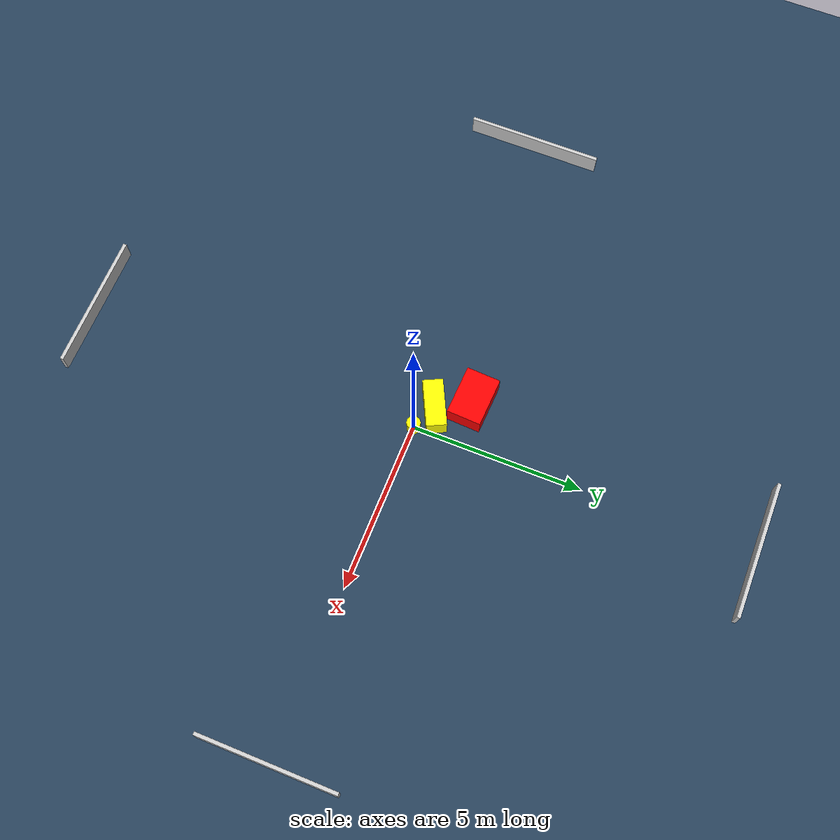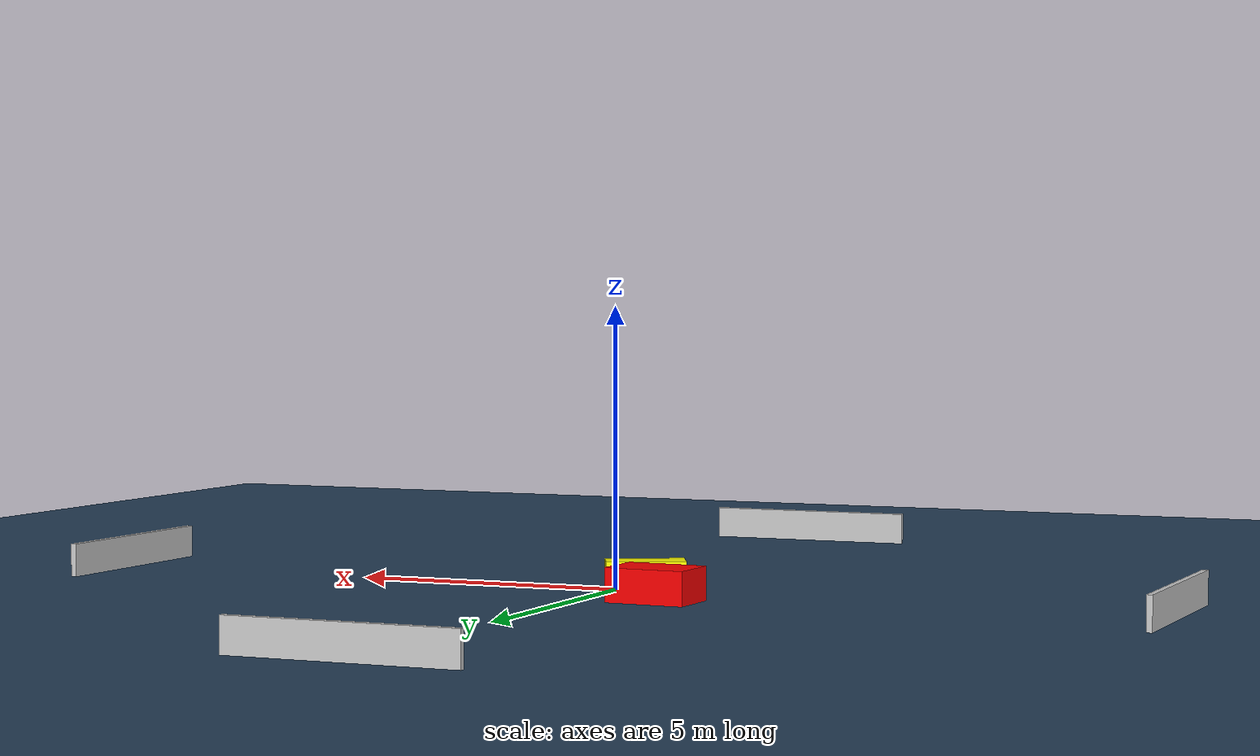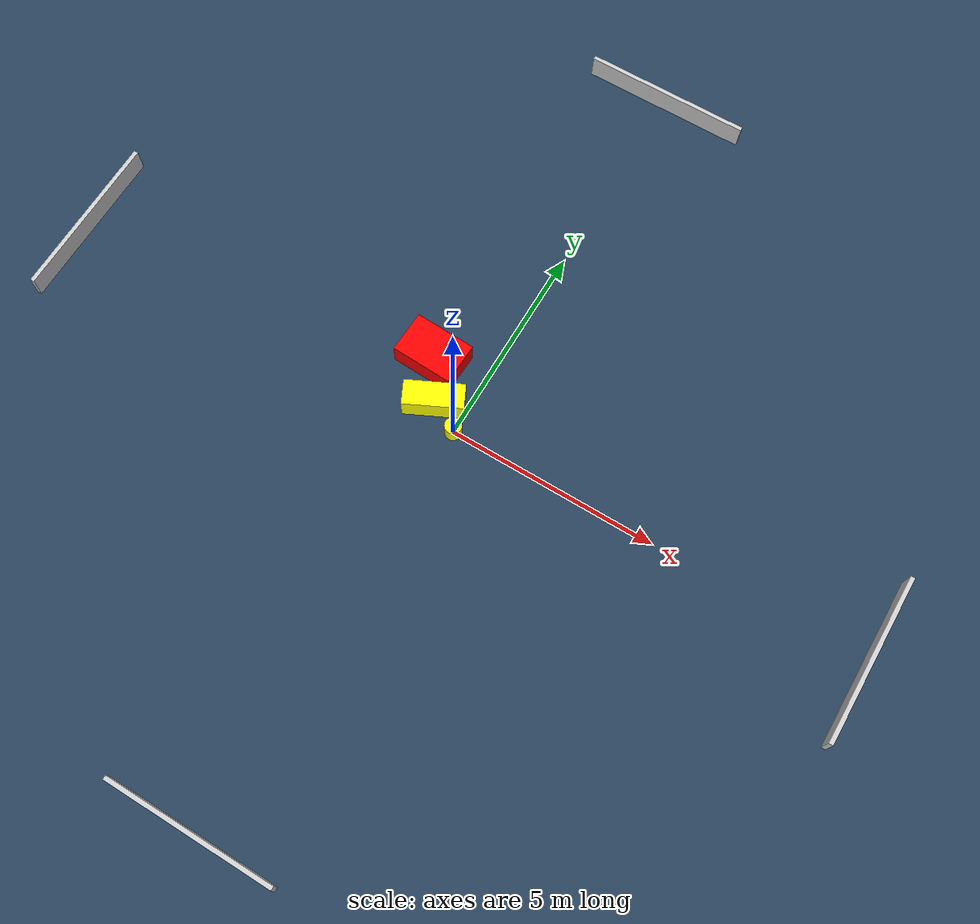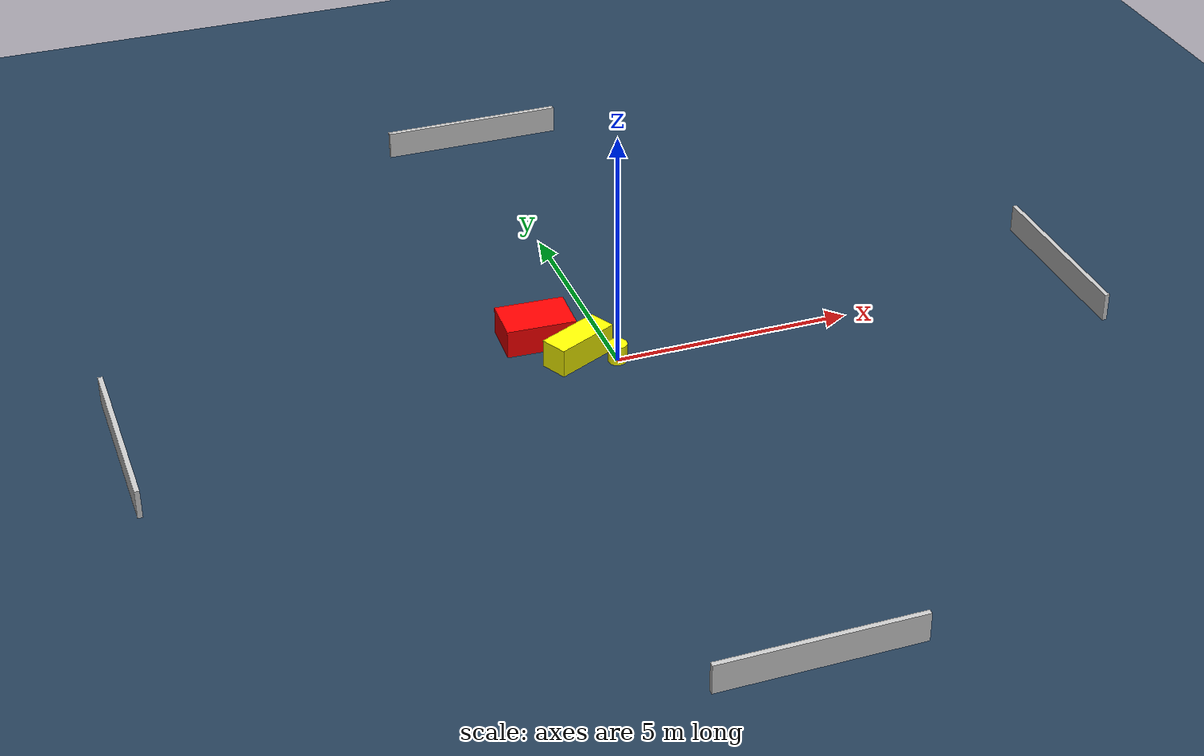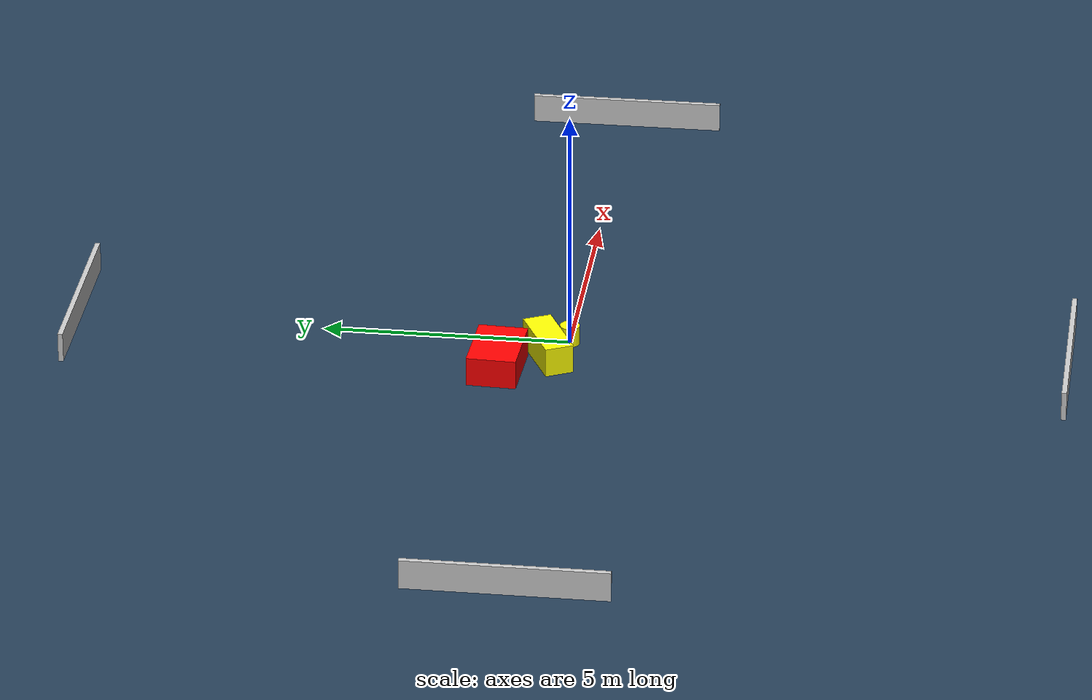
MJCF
<?xml version="1.0" ?>
<mujoco model="generated_environment">
  <option timestep="0.01" integrator="RK4" cone="elliptic"/>
  <default>
    <geom density="1"/>
  </default>
  <asset>
    <texture builtin="gradient" height="3072" name="skybox" rgb1="0.3 0.5 0.7" rgb2="0 0 0" type="skybox" width="512"/>
    <texture builtin="checker" height="300" name="groundplane" rgb1="0.2 0.3 0.4" rgb2="0.1 0.2 0.3" type="2d" width="300"/>
    <material name="groundplane" reflectance="0.2" texrepeat="5 5" texture="groundplane"/>
  </asset>
  <worldbody>
    <light dir="0 0 -1" directional="true" pos="0 0 1.5"/>
    <geom condim="3" friction="0.5 0.005 0.001" material="groundplane" name="floor" pos="0 0 0" size="0 0 0.05" type="plane"/>
    <body name="walls">
      <geom name="wall_1" condim="4" pos="-10.0 0.0 0.3" rgba="0.800000011920929 0.800000011920929 0.800000011920929 1.0" size="0.05 2.0 0.3" type="box"/>
      <geom name="wall_2" condim="4" pos="10.0 0.0 0.3" rgba="0.800000011920929 0.800000011920929 0.800000011920929 1.0" size="0.05 2.0 0.3" type="box"/>
      <geom name="wall_3" condim="4" pos="0.0 -10.0 0.3" rgba="0.800000011920929 0.800000011920929 0.800000011920929 1.0" size="2.0 0.05 0.3" type="box"/>
      <geom name="wall_4" condim="4" pos="0.0 10.0 0.3" rgba="0.800000011920929 0.800000011920929 0.800000011920929 1.0" size="2.0 0.05 0.3" type="box"/>
    </body>
    <body name="robot">
      <joint name="joint_x" type="slide" pos="0 0 0" axis="1 0 0"/>
      <joint name="joint_y" type="slide" pos="0 0 0" axis="0 1 0"/>
      <geom name="robot" type="cylinder" pos="0.0 0.0 0.2" size="0.2 0.2 0.0" mass="5.0" friction="1.0 0.005 0.0001" condim="4" rgba="1.0 1.0 0.0 1.0"/>
    </body>
    <body name="obstacle_1_movable">
      <geom name="obstacle_1_movable" condim="4" pos="-0.7178971830512261 0.3527013897750929 0.3" euler="0 0 26.079201477009622" friction="0.0 0.005 0.001" rgba="1.0 1.0 0.0 1.0" size="0.6976521568759755 0.2934927928851327 0.3" type="box" mass="0.1"/>
      <joint type="free"/>
    </body>
    <body name="obstacle_2_static">
      <geom name="obstacle_2_static" condim="4" pos="-1.3081617901294298 1.3006575362441137 0.3" euler="0 0 177.47198475033497" friction="0.0 0.005 0.001" rgba="1.0 0.0 0.0 1.0" size="0.7267540072570915 0.499010466063942 0.3" type="box"/>
    </body>
  </worldbody>
  <actuator>
    <motor name="actuator_x" joint="joint_x" gear="1" ctrlrange="-1 1"/>
    <motor name="actuator_y" joint="joint_y" gear="1" ctrlrange="-1 1"/>
  </actuator>
</mujoco>
